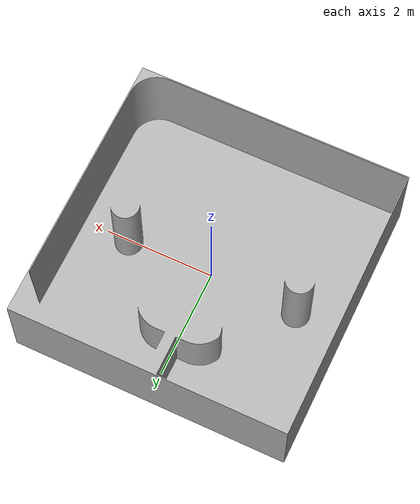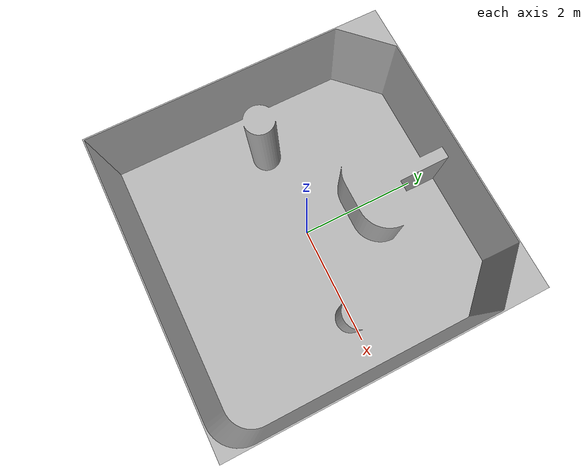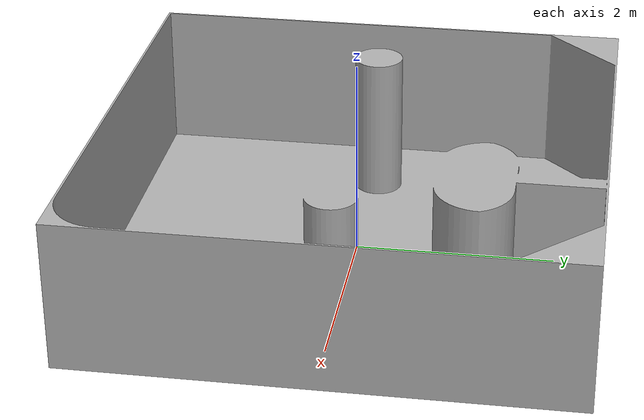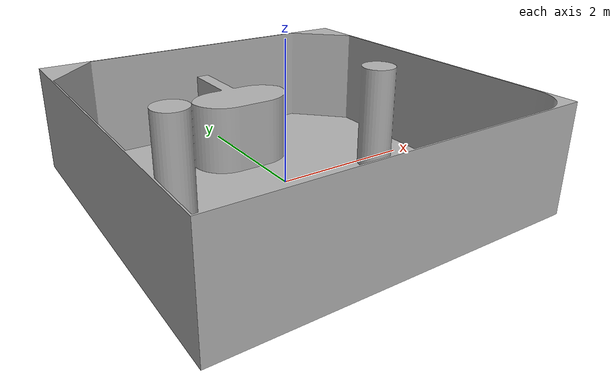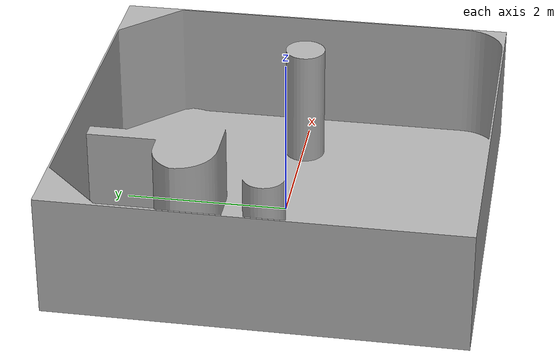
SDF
<?xml version="1.0"?>
<sdf version="1.9">
  <world name="escenario_world">
    <plugin filename="gz-sim-physics-system" name="gz::sim::systems::Physics"/>
    <plugin filename="gz-sim-sensors-system" name="gz::sim::systems::Sensors">
      <render_engine>ogre2</render_engine>
    </plugin>
    <plugin filename="gz-sim-scene-broadcaster-system" name="gz::sim::systems::SceneBroadcaster"/>
    <plugin filename="gz-sim-user-commands-system" name="gz::sim::systems::UserCommands"/>

    <light type="directional" name="sun">
      <cast_shadows>true</cast_shadows>
      <pose>0 0 10 0 0 0</pose>
      <diffuse>0.8 0.8 0.8 1</diffuse>
      <specular>0.2 0.2 0.2 1</specular>
      <direction>-0.5 0.1 -0.9</direction>
    </light>

    <!-- Inclusión modular del escenario, con pose explícita -->
    <include>
      <uri>model://escenario</uri>
      <pose>0 0 -0.1 0 0 0</pose>
    </include>
  </world>
</sdf>

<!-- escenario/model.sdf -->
<sdf version="1.9">
  <model name="escenario">
    <static>true</static>
    <link name="escenario_link">
      <visual name="escenario_visual">
        <geometry>
          <mesh>
            <uri>model://escenario/meshes/escenario.stl</uri>
            <scale>0.001 0.001 0.001</scale> <!-- pon 1 1 1 si ya está en metros -->
          </mesh>
        </geometry>
        <material>
          <ambient>0.7 0.7 0.7 1</ambient>
          <diffuse>0.7 0.7 0.7 1</diffuse>
        </material>
      </visual>
      <collision name="escenario_collision">
        <geometry>
          <mesh>
            <uri>model://escenario/meshes/escenario.stl</uri>
            <scale>0.001 0.001 0.001</scale>
          </mesh>
        </geometry>
      </collision>
    </link>
  </model>
</sdf>
